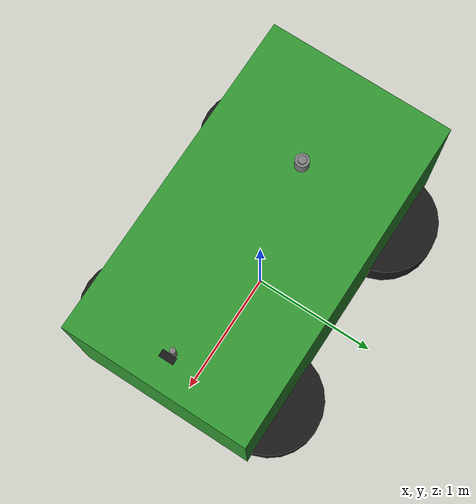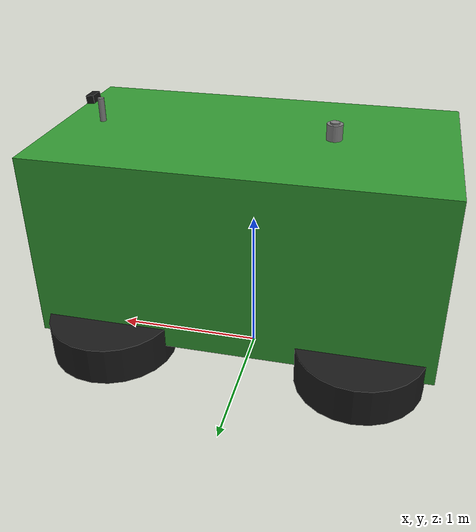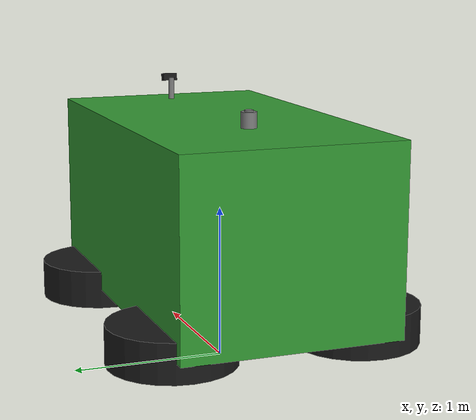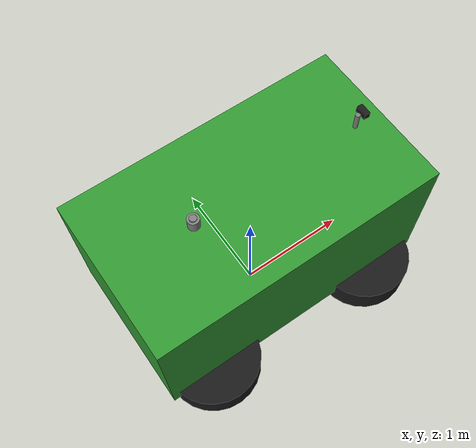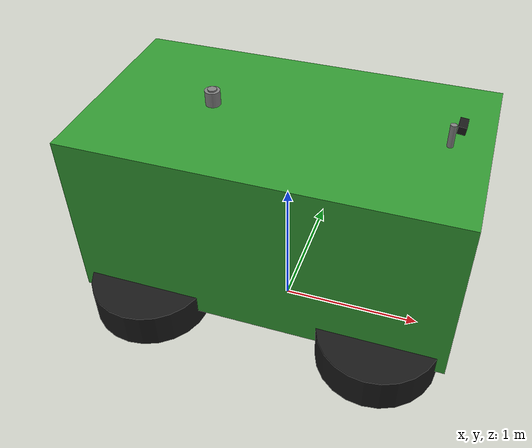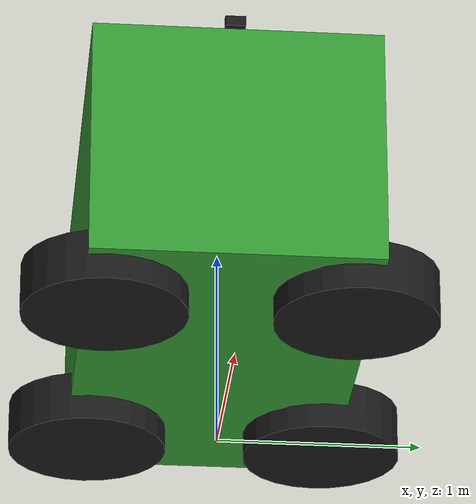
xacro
<?xml version="1.0"?>
<robot xmlns:xacro="http://www.ros.org/wiki/xacro" name="ss500">

  <!-- SS500 Agricultural Autonomous Tractor -->
  <!-- Main URDF that includes all components -->

  <!-- Include sub-files -->
  <xacro:include filename="$(find ad_simulation)/urdf/ss500_base.urdf.xacro"/>
  <xacro:include filename="$(find ad_simulation)/urdf/ss500_gazebo.urdf.xacro"/>
  <xacro:include filename="$(find ad_simulation)/urdf/ss500_sensors.urdf.xacro"/>

</robot>

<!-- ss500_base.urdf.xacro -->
<robot xmlns:xacro="http://www.ros.org/wiki/xacro" name="ss500">

  <!-- SS500 Agricultural Tractor - Base URDF -->
  <!-- Dimensions based on typical small agricultural tractor -->

  <!-- Properties -->
  <xacro:property name="base_length" value="2.5"/>
  <xacro:property name="base_width" value="1.4"/>
  <xacro:property name="base_height" value="1.2"/>
  <xacro:property name="base_mass" value="800"/>      <!-- kg -->

  <xacro:property name="wheel_radius" value="0.4"/>
  <xacro:property name="wheel_width" value="0.25"/>
  <xacro:property name="wheel_mass" value="30"/>      <!-- kg -->

  <xacro:property name="wheelbase" value="1.6"/>
  <xacro:property name="track_width" value="1.2"/>

  <!-- Materials -->
  <material name="green">
    <color rgba="0.2 0.6 0.2 1.0"/>
  </material>
  <material name="black">
    <color rgba="0.1 0.1 0.1 1.0"/>
  </material>
  <material name="grey">
    <color rgba="0.5 0.5 0.5 1.0"/>
  </material>
  <material name="glass">
    <color rgba="0.8 0.9 1.0 0.6"/>
  </material>

  <!-- Base Link -->
  <link name="base_footprint">
    <visual>
      <geometry>
        <box size="0.01 0.01 0.01"/>
      </geometry>
    </visual>
  </link>

  <link name="base_link">
    <inertial>
      <origin xyz="0 0 0.6" rpy="0 0 0"/>
      <mass value="${base_mass}"/>
      <inertia ixx="100" ixy="0" ixz="0"
               iyy="150" iyz="0"
               izz="100"/>
    </inertial>
    <visual>
      <origin xyz="0 0 0.6" rpy="0 0 0"/>
      <geometry>
        <box size="${base_length} ${base_width} ${base_height}"/>
      </geometry>
      <material name="green"/>
    </visual>
    <collision>
      <origin xyz="0 0 0.6" rpy="0 0 0"/>
      <geometry>
        <box size="${base_length} ${base_width} ${base_height}"/>
      </geometry>
    </collision>
  </link>

  <joint name="base_joint" type="fixed">
    <parent link="base_footprint"/>
    <child link="base_link"/>
    <origin xyz="0 0 0.4" rpy="0 0 0"/>
  </joint>

  <!-- Wheels -->
  <xacro:macro name="wheel" params="name x y side">
    <link name="${name}_wheel">
      <inertial>
        <origin xyz="0 0 0" rpy="0 0 0"/>
        <mass value="${wheel_mass}"/>
        <inertia ixx="1.0" ixy="0" ixz="0"
                 iyy="1.5" iyz="0"
                 izz="1.0"/>
      </inertial>
      <visual>
        <origin xyz="0 0 0" rpy="0 0 0"/>
        <geometry>
          <cylinder radius="${wheel_radius}" length="${wheel_width}"/>
        </geometry>
        <material name="black"/>
      </visual>
      <collision>
        <origin xyz="0 0 0" rpy="0 0 0"/>
        <geometry>
          <cylinder radius="${wheel_radius}" length="${wheel_width}"/>
        </geometry>
      </collision>
    </link>

    <joint name="${name}_wheel_joint" type="continuous">
      <parent link="base_link"/>
      <child link="${name}_wheel"/>
      <origin xyz="${x} ${y} 0" rpy="0 0 0"/>
      <axis xyz="0 1 0"/>
    </joint>
  </xacro:macro>

  <!-- 4 Wheels -->
  <xacro:wheel name="front_left" x="${wheelbase/2}" y="${track_width/2}" side="left"/>
  <xacro:wheel name="front_right" x="${wheelbase/2}" y="${-track_width/2}" side="right"/>
  <xacro:wheel name="rear_left" x="${-wheelbase/2}" y="${track_width/2}" side="left"/>
  <xacro:wheel name="rear_right" x="${-wheelbase/2}" y="${-track_width/2}" side="right"/>

  <!-- Camera Mount -->
  <link name="camera_mount">
    <visual>
      <origin xyz="0 0 0" rpy="0 0 0"/>
      <geometry>
        <cylinder radius="0.02" length="0.3"/>
      </geometry>
      <material name="grey"/>
    </visual>
  </link>
  <joint name="camera_mount_joint" type="fixed">
    <parent link="base_link"/>
    <child link="camera_mount"/>
    <origin xyz="1.0 0 1.2" rpy="0 0 0"/>
  </joint>

  <!-- GPS/IMU Mount -->
  <link name="gps_imu_mount">
    <visual>
      <origin xyz="0 0 0" rpy="0 0 0"/>
      <geometry>
        <cylinder radius="0.05" length="0.1"/>
      </geometry>
      <material name="grey"/>
    </visual>
  </link>
  <joint name="gps_imu_mount_joint" type="fixed">
    <parent link="base_link"/>
    <child link="gps_imu_mount"/>
    <origin xyz="-0.5 0 1.25" rpy="0 0 0"/>
  </joint>

</robot>

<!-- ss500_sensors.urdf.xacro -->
<robot xmlns:xacro="http://www.ros.org/wiki/xacro">

  <!-- SS500 Sensors Configuration for Gazebo Harmonic -->

  <!-- Camera Link -->
  <link name="camera_link">
    <inertial>
      <origin xyz="0 0 0" rpy="0 0 0"/>
      <mass value="0.1"/>
      <inertia ixx="0.001" ixy="0" ixz="0"
               iyy="0.001" iyz="0"
               izz="0.001"/>
    </inertial>
    <visual>
      <origin xyz="0 0 0" rpy="0 0 0"/>
      <geometry>
        <box size="0.05 0.1 0.05"/>
      </geometry>
      <material name="black"/>
    </visual>
  </link>

  <joint name="camera_joint" type="fixed">
    <parent link="camera_mount"/>
    <child link="camera_link"/>
    <origin xyz="0.05 0 0.15" rpy="0 0.1 0"/>
    <!-- Slightly tilted down (0.1 rad ~ 5.7 degrees) -->
  </joint>

  <!-- Camera Optical Frame (for ROS convention) -->
  <link name="camera_optical_frame"/>
  <joint name="camera_optical_joint" type="fixed">
    <parent link="camera_link"/>
    <child link="camera_optical_frame"/>
    <origin xyz="0 0 0" rpy="-1.5708 0 -1.5708"/>
    <!-- Rotate to match camera optical convention -->
  </joint>

  <!-- Gazebo Camera (Gazebo Harmonic) -->
  <gazebo reference="camera_link">
    <sensor type="camera" name="front_camera">
      <camera>
        <horizontal_fov>1.047</horizontal_fov>  <!-- 60 degrees -->
        <image>
          <width>640</width>
          <height>480</height>
          <format>R8G8B8</format>
        </image>
        <clip>
          <near>0.05</near>
          <far>100</far>
        </clip>
        <noise>
          <type>gaussian</type>
          <mean>0.0</mean>
          <stddev>0.007</stddev>
        </noise>
      </camera>
      <always_on>true</always_on>
      <update_rate>30</update_rate>
      <visualize>true</visualize>
      <topic>camera/image_raw</topic>
    </sensor>
  </gazebo>

  <!-- GPS Link -->
  <link name="gps_link">
    <visual>
      <origin xyz="0 0 0" rpy="0 0 0"/>
      <geometry>
        <cylinder radius="0.03" length="0.02"/>
      </geometry>
      <material name="grey"/>
    </visual>
  </link>

  <joint name="gps_joint" type="fixed">
    <parent link="gps_imu_mount"/>
    <child link="gps_link"/>
    <origin xyz="0 0 0.05" rpy="0 0 0"/>
  </joint>

  <!-- Gazebo GPS (Gazebo Harmonic) -->
  <gazebo reference="gps_link">
    <sensor type="navsat" name="gps_sensor">
      <always_on>true</always_on>
      <update_rate>10</update_rate>
      <topic>gps/fix</topic>
    </sensor>
  </gazebo>

  <!-- IMU Link -->
  <link name="imu_link">
    <visual>
      <origin xyz="0 0 0" rpy="0 0 0"/>
      <geometry>
        <box size="0.05 0.05 0.02"/>
      </geometry>
      <material name="grey"/>
    </visual>
  </link>

  <joint name="imu_joint" type="fixed">
    <parent link="gps_imu_mount"/>
    <child link="imu_link"/>
    <origin xyz="0 0 -0.05" rpy="0 0 0"/>
  </joint>

  <!-- Gazebo IMU (Gazebo Harmonic) -->
  <gazebo reference="imu_link">
    <sensor type="imu" name="imu_sensor">
      <always_on>true</always_on>
      <update_rate>100</update_rate>
      <topic>imu/data</topic>
      <imu>
        <angular_velocity>
          <x>
            <noise type="gaussian">
              <mean>0</mean>
              <stddev>0.01</stddev>
            </noise>
          </x>
          <y>
            <noise type="gaussian">
              <mean>0</mean>
              <stddev>0.01</stddev>
            </noise>
          </y>
          <z>
            <noise type="gaussian">
              <mean>0</mean>
              <stddev>0.01</stddev>
            </noise>
          </z>
        </angular_velocity>
        <linear_acceleration>
          <x>
            <noise type="gaussian">
              <mean>0</mean>
              <stddev>0.01</stddev>
            </noise>
          </x>
          <y>
            <noise type="gaussian">
              <mean>0</mean>
              <stddev>0.01</stddev>
            </noise>
          </y>
          <z>
            <noise type="gaussian">
              <mean>0</mean>
              <stddev>0.01</stddev>
            </noise>
          </z>
        </linear_acceleration>
      </imu>
    </sensor>
  </gazebo>

  <!-- 2D LiDAR (Optional) -->
  <link name="lidar_link">
    <visual>
      <origin xyz="0 0 0" rpy="0 0 0"/>
      <geometry>
        <cylinder radius="0.04" length="0.06"/>
      </geometry>
      <material name="grey"/>
    </visual>
  </link>

  <joint name="lidar_joint" type="fixed">
    <parent link="base_link"/>
    <child link="lidar_link"/>
    <origin xyz="0.8 0 0.9" rpy="0 0 0"/>
  </joint>

  <!-- Gazebo LiDAR (Gazebo Harmonic) -->
  <gazebo reference="lidar_link">
    <sensor type="gpu_lidar" name="lidar_sensor">
      <pose>0 0 0 0 0 0</pose>
      <topic>scan</topic>
      <update_rate>10</update_rate>
      <ray>
        <scan>
          <horizontal>
            <samples>360</samples>
            <resolution>1</resolution>
            <min_angle>-3.14159</min_angle>
            <max_angle>3.14159</max_angle>
          </horizontal>
        </scan>
        <range>
          <min>0.3</min>
          <max>30.0</max>
          <resolution>0.01</resolution>
        </range>
        <noise>
          <type>gaussian</type>
          <mean>0.0</mean>
          <stddev>0.01</stddev>
        </noise>
      </ray>
      <always_on>true</always_on>
      <visualize>false</visualize>
    </sensor>
  </gazebo>

</robot>
